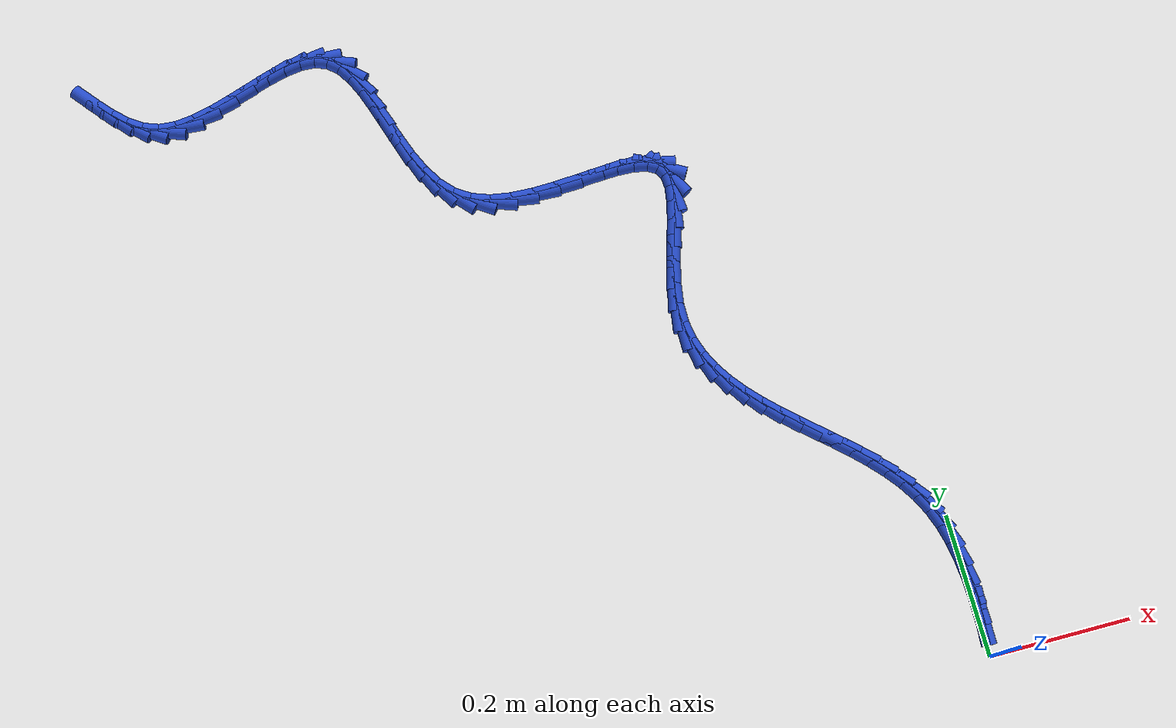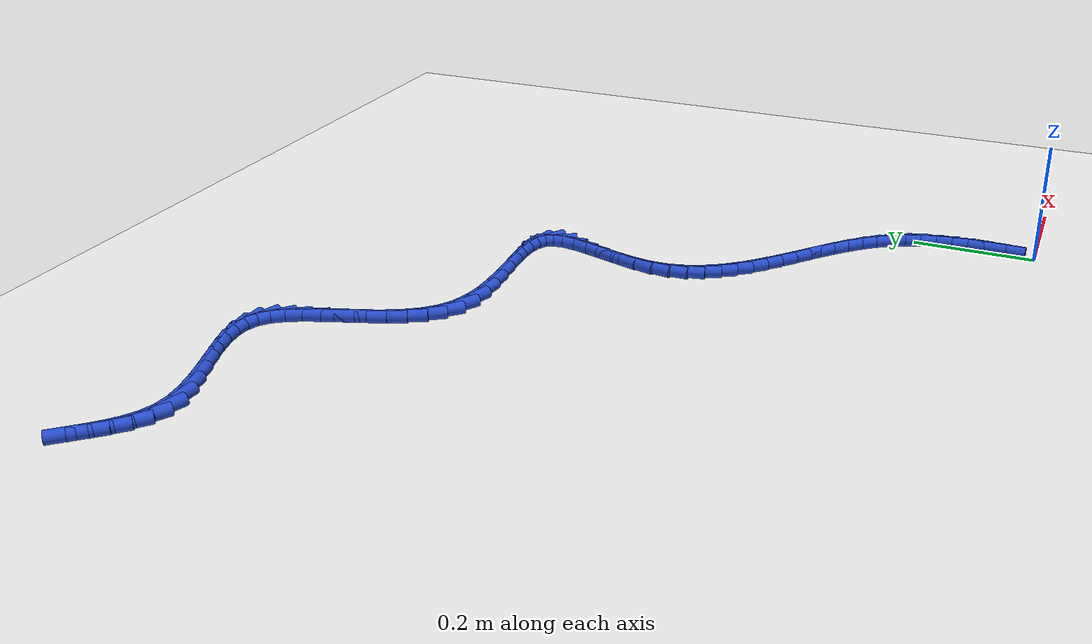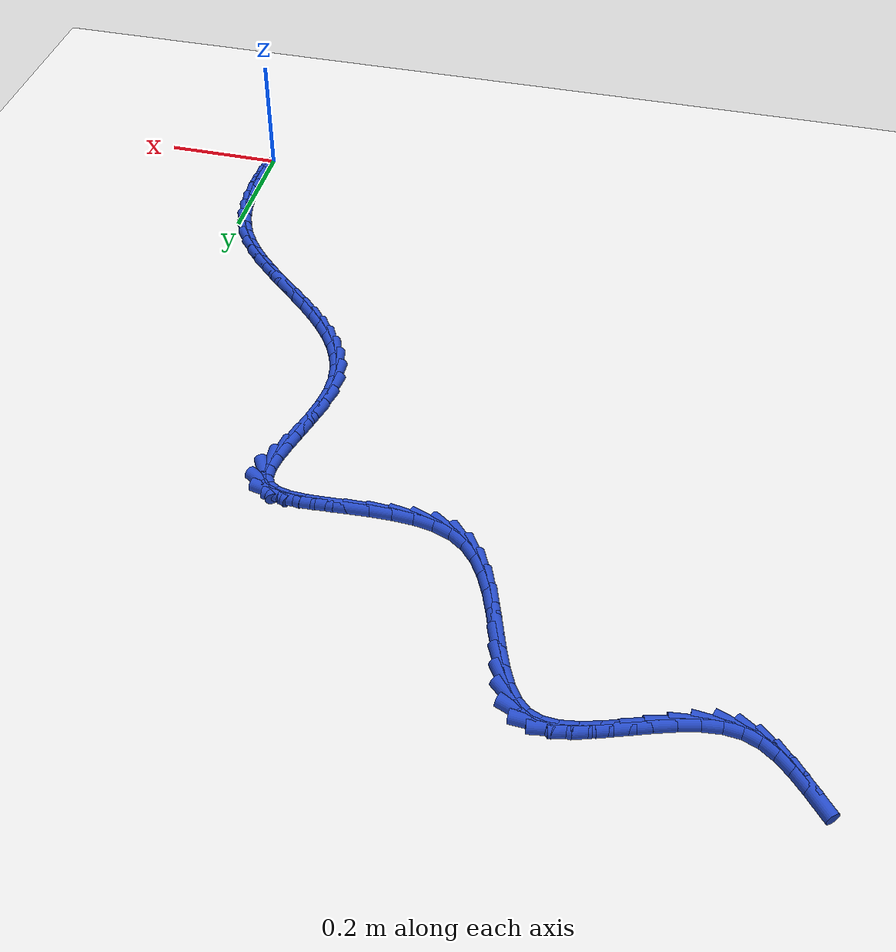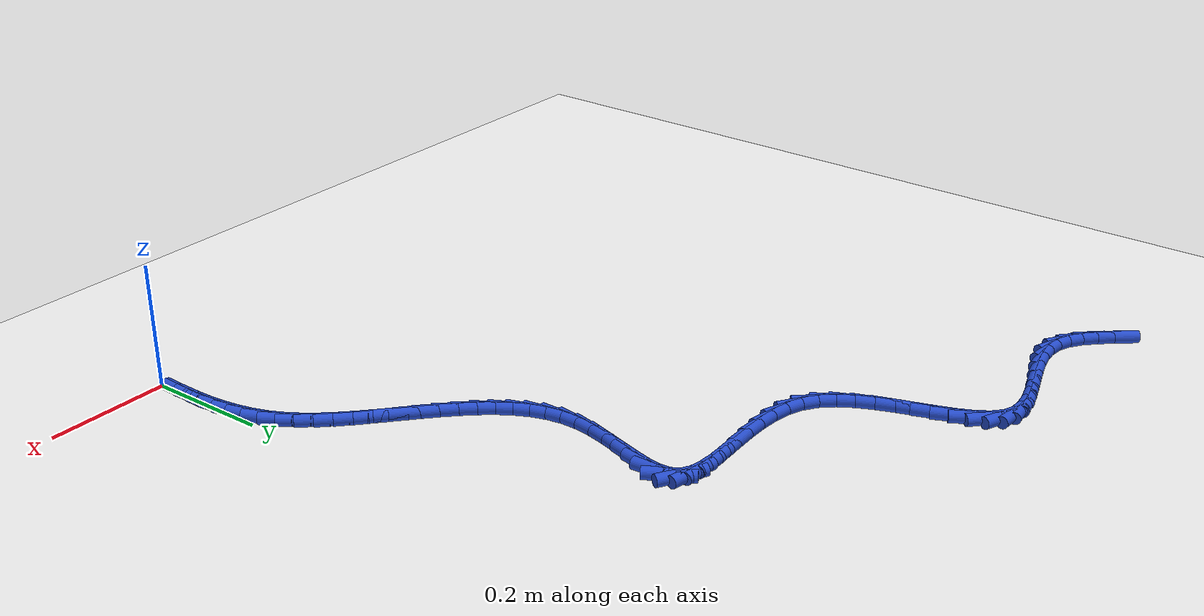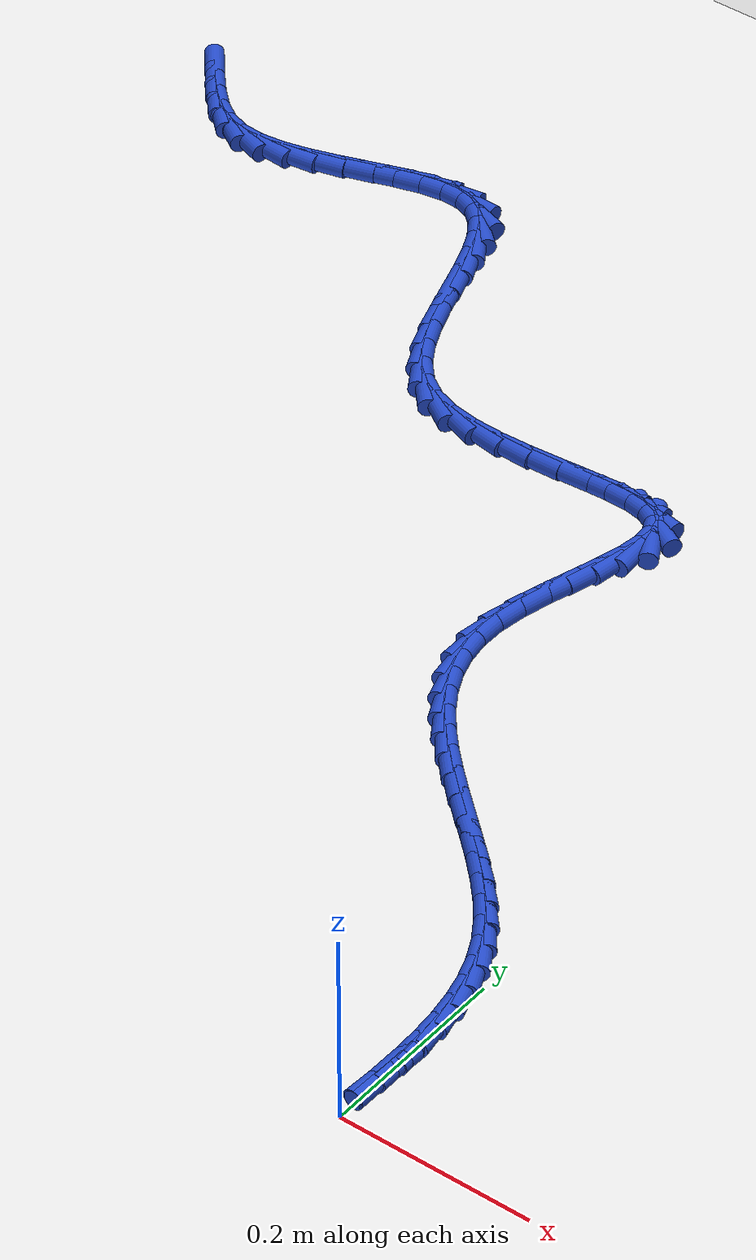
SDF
<sdf version="1.6">
 <world name="default">
  <model name="ground_plane">
   <static>1</static>
   <link name="link">
    <collision name="collision">
     <geometry><plane><normal>0 0 1</normal><size>100 100</size></plane></geometry>
     <surface><friction><ode><mu>100</mu><mu2>50</mu2></ode></friction></surface>
    </collision>
    <visual name="visual">
     <cast_shadows>0</cast_shadows>
     <geometry><plane><normal>0 0 1</normal><size>100 100</size></plane></geometry>
     <material>
      <script><uri>file://media/materials/scripts/gazebo.material</uri><name>Gazebo/WhiteGlow</name></script>
     </material>
    </visual>
   </link>
  </model>
  <model name="line">
   <link name="link_2">
    <pose>0.00297305319521827 0.055140027003314086 0.01 0 1.57 1.5581401452712988</pose>
    <collision name="collision">
     <geometry><cylinder><radius>0.01</radius><length>0.08</length></cylinder></geometry>
    </collision>
    <visual name="visual">
     <material>
      <script><name>Gazebo/Blue</name><uri>file://media/materials/scripts/gazebo.material</uri></script>
     </material>
     <geometry><cylinder><radius>0.01</radius><length>0.08</length></cylinder></geometry>
    </visual>
   </link>
   <link name="link_3">
    <pose>0.0033229610822005785 0.08278574332831226 0.01 0 1.57 -1.5402923842408789</pose>
    <collision name="collision">
     <geometry><cylinder><radius>0.01</radius><length>0.08</length></cylinder></geometry>
    </collision>
    <visual name="visual">
     <material>
      <script><name>Gazebo/Blue</name><uri>file://media/materials/scripts/gazebo.material</uri></script>
     </material>
     <geometry><cylinder><radius>0.01</radius><length>0.08</length></cylinder></geometry>
    </visual>
   </link>
   <link name="link_4">
    <pose>0.0024856830080716495 0.11022542144318874 0.01 0 1.57 -1.4842367252459752</pose>
    <collision name="collision">
     <geometry><cylinder><radius>0.01</radius><length>0.08</length></cylinder></geometry>
    </collision>
    <visual name="visual">
     <material>
      <script><name>Gazebo/Blue</name><uri>file://media/materials/scripts/gazebo.material</uri></script>
     </material>
     <geometry><cylinder><radius>0.01</radius><length>0.08</length></cylinder></geometry>
    </visual>
   </link>
   <link name="link_5">
    <pose>0.00013913885731146967 0.13726668127868177 0.01 0 1.57 -1.4141390577073683</pose>
    <collision name="collision">
     <geometry><cylinder><radius>0.01</radius><length>0.08</length></cylinder></geometry>
    </collision>
    <visual name="visual">
     <material>
      <script><name>Gazebo/Blue</name><uri>file://media/materials/scripts/gazebo.material</uri></script>
     </material>
     <geometry><cylinder><radius>0.01</radius><length>0.08</length></cylinder></geometry>
    </visual>
   </link>
   <link name="link_6">
    <pose>-0.004038751485599986 0.16371714276552943 0.01 0 1.57 -1.328955406196113</pose>
    <collision name="collision">
     <geometry><cylinder><radius>0.01</radius><length>0.08</length></cylinder></geometry>
    </collision>
    <visual name="visual">
     <material>
      <script><name>Gazebo/Blue</name><uri>file://media/materials/scripts/gazebo.material</uri></script>
     </material>
     <geometry><cylinder><radius>0.01</radius><length>0.08</length></cylinder></geometry>
    </visual>
   </link>
   <link name="link_7">
    <pose>-0.010370068136182723 0.18938442583447004 0.01 0 1.57 -1.228190893494446</pose>
    <collision name="collision">
     <geometry><cylinder><radius>0.01</radius><length>0.08</length></cylinder></geometry>
    </collision>
    <visual name="visual">
     <material>
      <script><name>Gazebo/Blue</name><uri>file://media/materials/scripts/gazebo.material</uri></script>
     </material>
     <geometry><cylinder><radius>0.01</radius><length>0.08</length></cylinder></geometry>
    </visual>
   </link>
   <link name="link_8">
    <pose>-0.01917689120995676 0.2140761504162416 0.01 0 1.57 -1.1126762332230302</pose>
    <collision name="collision">
     <geometry><cylinder><radius>0.01</radius><length>0.08</length></cylinder></geometry>
    </collision>
    <visual name="visual">
     <material>
      <script><name>Gazebo/Blue</name><uri>file://media/materials/scripts/gazebo.material</uri></script>
     </material>
     <geometry><cylinder><radius>0.01</radius><length>0.08</length></cylinder></geometry>
    </visual>
   </link>
   <link name="link_9">
    <pose>-0.030777596258192232 0.23760176326670743 0.01 0 1.57 -0.9965495215671685</pose>
    <collision name="collision">
     <geometry><cylinder><radius>0.01</radius><length>0.08</length></cylinder></geometry>
    </collision>
    <visual name="visual">
     <material>
      <script><name>Gazebo/Blue</name><uri>file://media/materials/scripts/gazebo.material</uri></script>
     </material>
     <geometry><cylinder><radius>0.01</radius><length>0.08</length></cylinder></geometry>
    </visual>
   </link>
   <link name="link_10">
    <pose>-0.04520992030766205 0.2599091019140395 0.01 0 1.57 -0.9014258694540425</pose>
    <collision name="collision">
     <geometry><cylinder><radius>0.01</radius><length>0.08</length></cylinder></geometry>
    </collision>
    <visual name="visual">
     <material>
      <script><name>Gazebo/Blue</name><uri>file://media/materials/scripts/gazebo.material</uri></script>
     </material>
     <geometry><cylinder><radius>0.01</radius><length>0.08</length></cylinder></geometry>
    </visual>
   </link>
   <link name="link_11">
    <pose>-0.0620392492085431 0.28117893357504437 0.01 0 1.57 -0.8284798677416844</pose>
    <collision name="collision">
     <geometry><cylinder><radius>0.01</radius><length>0.08</length></cylinder></geometry>
    </collision>
    <visual name="visual">
     <material>
      <script><name>Gazebo/Blue</name><uri>file://media/materials/scripts/gazebo.material</uri></script>
     </material>
     <geometry><cylinder><radius>0.01</radius><length>0.08</length></cylinder></geometry>
    </visual>
   </link>
   <link name="link_12">
    <pose>-0.08078563250280894 0.30161438207888996 0.01 0 1.57 -0.7759130741640365</pose>
    <collision name="collision">
     <geometry><cylinder><radius>0.01</radius><length>0.08</length></cylinder></geometry>
    </collision>
    <visual name="visual">
     <material>
      <script><name>Gazebo/Blue</name><uri>file://media/materials/scripts/gazebo.material</uri></script>
     </material>
     <geometry><cylinder><radius>0.01</radius><length>0.08</length></cylinder></geometry>
    </visual>
   </link>
   <link name="link_13">
    <pose>-0.10096911973243322 0.3214185712547443 0.01 0 1.57 -0.7418735707848516</pose>
    <collision name="collision">
     <geometry><cylinder><radius>0.01</radius><length>0.08</length></cylinder></geometry>
    </collision>
    <visual name="visual">
     <material>
      <script><name>Gazebo/Blue</name><uri>file://media/materials/scripts/gazebo.material</uri></script>
     </material>
     <geometry><cylinder><radius>0.01</radius><length>0.08</length></cylinder></geometry>
    </visual>
   </link>
   <link name="link_14">
    <pose>-0.12210976043938972 0.34079462493177565 0.01 0 1.57 -0.7249648728377506</pose>
    <collision name="collision">
     <geometry><cylinder><radius>0.01</radius><length>0.08</length></cylinder></geometry>
    </collision>
    <visual name="visual">
     <material>
      <script><name>Gazebo/Blue</name><uri>file://media/materials/scripts/gazebo.material</uri></script>
     </material>
     <geometry><cylinder><radius>0.01</radius><length>0.08</length></cylinder></geometry>
    </visual>
   </link>
   <link name="link_15">
    <pose>-0.14372760416565195 0.35994566693915175 0.01 0 1.57 -0.7244603814829383</pose>
    <collision name="collision">
     <geometry><cylinder><radius>0.01</radius><length>0.08</length></cylinder></geometry>
    </collision>
    <visual name="visual">
     <material>
      <script><name>Gazebo/Blue</name><uri>file://media/materials/scripts/gazebo.material</uri></script>
     </material>
     <geometry><cylinder><radius>0.01</radius><length>0.08</length></cylinder></geometry>
    </visual>
   </link>
   <link name="link_16">
    <pose>-0.1653427004531936 0.37907482110604085 0.01 0 1.57 -0.740377107047922</pose>
    <collision name="collision">
     <geometry><cylinder><radius>0.01</radius><length>0.08</length></cylinder></geometry>
    </collision>
    <visual name="visual">
     <material>
      <script><name>Gazebo/Blue</name><uri>file://media/materials/scripts/gazebo.material</uri></script>
     </material>
     <geometry><cylinder><radius>0.01</radius><length>0.08</length></cylinder></geometry>
    </visual>
   </link>
   <link name="link_17">
    <pose>-0.18647509884398833 0.3983852112616108 0.01 0 1.57 -0.7734833623869911</pose>
    <collision name="collision">
     <geometry><cylinder><radius>0.01</radius><length>0.08</length></cylinder></geometry>
    </collision>
    <visual name="visual">
     <material>
      <script><name>Gazebo/Blue</name><uri>file://media/materials/scripts/gazebo.material</uri></script>
     </material>
     <geometry><cylinder><radius>0.01</radius><length>0.08</length></cylinder></geometry>
    </visual>
   </link>
   <link name="link_18">
    <pose>-0.20664484888000972 0.4180799612350295 0.01 0 1.57 -0.8252413813281131</pose>
    <collision name="collision">
     <geometry><cylinder><radius>0.01</radius><length>0.08</length></cylinder></geometry>
    </collision>
    <visual name="visual">
     <material>
      <script><name>Gazebo/Blue</name><uri>file://media/materials/scripts/gazebo.material</uri></script>
     </material>
     <geometry><cylinder><radius>0.01</radius><length>0.08</length></cylinder></geometry>
    </visual>
   </link>
   <link name="link_19">
    <pose>-0.2253720001032316 0.43836219485546546 0.01 0 1.57 -0.8976103176153315</pose>
    <collision name="collision">
     <geometry><cylinder><radius>0.01</radius><length>0.08</length></cylinder></geometry>
    </collision>
    <visual name="visual">
     <material>
      <script><name>Gazebo/Blue</name><uri>file://media/materials/scripts/gazebo.material</uri></script>
     </material>
     <geometry><cylinder><radius>0.01</radius><length>0.08</length></cylinder></geometry>
    </visual>
   </link>
   <link name="link_20">
    <pose>-0.24217660205562738 0.4594350359520862 0.01 0 1.57 -0.992549201913956</pose>
    <collision name="collision">
     <geometry><cylinder><radius>0.01</radius><length>0.08</length></cylinder></geometry>
    </collision>
    <visual name="visual">
     <material>
      <script><name>Gazebo/Blue</name><uri>file://media/materials/scripts/gazebo.material</uri></script>
     </material>
     <geometry><cylinder><radius>0.01</radius><length>0.08</length></cylinder></geometry>
    </visual>
   </link>
   <link name="link_21">
    <pose>-0.2565787042791709 0.4815016083540599 0.01 0 1.57 -1.1110098002361324</pose>
    <collision name="collision">
     <geometry><cylinder><radius>0.01</radius><length>0.08</length></cylinder></geometry>
    </collision>
    <visual name="visual">
     <material>
      <script><name>Gazebo/Blue</name><uri>file://media/materials/scripts/gazebo.material</uri></script>
     </material>
     <geometry><cylinder><radius>0.01</radius><length>0.08</length></cylinder></geometry>
    </visual>
   </link>
   <link name="link_22">
    <pose>-0.26809835631583573 0.5047650358905547 0.01 0 1.57 -1.2513787958632676</pose>
    <collision name="collision">
     <geometry><cylinder><radius>0.01</radius><length>0.08</length></cylinder></geometry>
    </collision>
    <visual name="visual">
     <material>
      <script><name>Gazebo/Blue</name><uri>file://media/materials/scripts/gazebo.material</uri></script>
     </material>
     <geometry><cylinder><radius>0.01</radius><length>0.08</length></cylinder></geometry>
    </visual>
   </link>
   <link name="link_23">
    <pose>-0.27625560770759555 0.5294284423907386 0.01 0 1.57 -1.4079767066610775</pose>
    <collision name="collision">
     <geometry><cylinder><radius>0.01</radius><length>0.08</length></cylinder></geometry>
    </collision>
    <visual name="visual">
     <material>
      <script><name>Gazebo/Blue</name><uri>file://media/materials/scripts/gazebo.material</uri></script>
     </material>
     <geometry><cylinder><radius>0.01</radius><length>0.08</length></cylinder></geometry>
    </visual>
   </link>
   <link name="link_24">
    <pose>-0.28057050799642397 0.5556949516837795 0.01 0 1.57 1.5705443147911478</pose>
    <collision name="collision">
     <geometry><cylinder><radius>0.01</radius><length>0.08</length></cylinder></geometry>
    </collision>
    <visual name="visual">
     <material>
      <script><name>Gazebo/Blue</name><uri>file://media/materials/scripts/gazebo.material</uri></script>
     </material>
     <geometry><cylinder><radius>0.01</radius><length>0.08</length></cylinder></geometry>
    </visual>
   </link>
   <link name="link_25">
    <pose>-0.2805634333794303 0.5837674908432817 0.01 0 1.57 1.4257920130230182</pose>
    <collision name="collision">
     <geometry><cylinder><radius>0.01</radius><length>0.08</length></cylinder></geometry>
    </collision>
    <visual name="visual">
     <material>
      <script><name>Gazebo/Blue</name><uri>file://media/materials/scripts/gazebo.material</uri></script>
     </material>
     <geometry><cylinder><radius>0.01</radius><length>0.08</length></cylinder></geometry>
    </visual>
   </link>
   <link name="link_26">
    <pose>-0.2762107650227242 0.6135743195492026 0.01 0 1.57 1.335130860862073</pose>
    <collision name="collision">
     <geometry><cylinder><radius>0.01</radius><length>0.08</length></cylinder></geometry>
    </collision>
    <visual name="visual">
     <material>
      <script><name>Gazebo/Blue</name><uri>file://media/materials/scripts/gazebo.material</uri></script>
     </material>
     <geometry><cylinder><radius>0.01</radius><length>0.08</length></cylinder></geometry>
    </visual>
   </link>
   <link name="link_27">
    <pose>-0.268851136227735 0.6442231664150978 0.01 0 1.57 1.2901959788291775</pose>
    <collision name="collision">
     <geometry><cylinder><radius>0.01</radius><length>0.08</length></cylinder></geometry>
    </collision>
    <visual name="visual">
     <material>
      <script><name>Gazebo/Blue</name><uri>file://media/materials/scripts/gazebo.material</uri></script>
     </material>
     <geometry><cylinder><radius>0.01</radius><length>0.08</length></cylinder></geometry>
    </visual>
   </link>
   <link name="link_28">
    <pose>-0.26007645305476546 0.6746692052068983 0.01 0 1.57 1.2844276344993268</pose>
    <collision name="collision">
     <geometry><cylinder><radius>0.01</radius><length>0.08</length></cylinder></geometry>
    </collision>
    <visual name="visual">
     <material>
      <script><name>Gazebo/Blue</name><uri>file://media/materials/scripts/gazebo.material</uri></script>
     </material>
     <geometry><cylinder><radius>0.01</radius><length>0.08</length></cylinder></geometry>
    </visual>
   </link>
   <link name="link_29">
    <pose>-0.2514786215641184 0.7038676096905362 0.01 0 1.57 1.322232350640513</pose>
    <collision name="collision">
     <geometry><cylinder><radius>0.01</radius><length>0.08</length></cylinder></geometry>
    </collision>
    <visual name="visual">
     <material>
      <script><name>Gazebo/Blue</name><uri>file://media/materials/scripts/gazebo.material</uri></script>
     </material>
     <geometry><cylinder><radius>0.01</radius><length>0.08</length></cylinder></geometry>
    </visual>
   </link>
   <link name="link_30">
    <pose>-0.24464954781609638 0.730773553631943 0.01 0 1.57 1.4246831106242652</pose>
    <collision name="collision">
     <geometry><cylinder><radius>0.01</radius><length>0.08</length></cylinder></geometry>
    </collision>
    <visual name="visual">
     <material>
      <script><name>Gazebo/Blue</name><uri>file://media/materials/scripts/gazebo.material</uri></script>
     </material>
     <geometry><cylinder><radius>0.01</radius><length>0.08</length></cylinder></geometry>
    </visual>
   </link>
   <link name="link_31">
    <pose>-0.2411811378710022 0.7543422107970507 0.01 0 1.57 -1.4935958551466102</pose>
    <collision name="collision">
     <geometry><cylinder><radius>0.01</radius><length>0.08</length></cylinder></geometry>
    </collision>
    <visual name="visual">
     <material>
      <script><name>Gazebo/Blue</name><uri>file://media/materials/scripts/gazebo.material</uri></script>
     </material>
     <geometry><cylinder><radius>0.01</radius><length>0.08</length></cylinder></geometry>
    </visual>
   </link>
   <link name="link_32">
    <pose>-0.2426652977891386 0.7735287549517907 0.01 0 1.57 -1.0463394015341139</pose>
    <collision name="collision">
     <geometry><cylinder><radius>0.01</radius><length>0.08</length></cylinder></geometry>
    </collision>
    <visual name="visual">
     <material>
      <script><name>Gazebo/Blue</name><uri>file://media/materials/scripts/gazebo.material</uri></script>
     </material>
     <geometry><cylinder><radius>0.01</radius><length>0.08</length></cylinder></geometry>
    </visual>
   </link>
   <link name="link_33">
    <pose>-0.2506469109383618 0.7873259574337156 0.01 0 1.57 -0.5165842766796802</pose>
    <collision name="collision">
     <geometry><cylinder><radius>0.01</radius><length>0.08</length></cylinder></geometry>
    </collision>
    <visual name="visual">
     <material>
      <script><name>Gazebo/Blue</name><uri>file://media/materials/scripts/gazebo.material</uri></script>
     </material>
     <geometry><cylinder><radius>0.01</radius><length>0.08</length></cylinder></geometry>
    </visual>
   </link>
   <link name="link_34">
    <pose>-0.2654266824783944 0.7957213875567517 0.01 0 1.57 -0.19490272206394027</pose>
    <collision name="collision">
     <geometry><cylinder><radius>0.01</radius><length>0.08</length></cylinder></geometry>
    </collision>
    <visual name="visual">
     <material>
      <script><name>Gazebo/Blue</name><uri>file://media/materials/scripts/gazebo.material</uri></script>
     </material>
     <geometry><cylinder><radius>0.01</radius><length>0.08</length></cylinder></geometry>
    </visual>
   </link>
   <link name="link_35">
    <pose>-0.2859634464700576 0.7997755241625881 0.01 0 1.57 -0.032806854001937114</pose>
    <collision name="collision">
     <geometry><cylinder><radius>0.01</radius><length>0.08</length></cylinder></geometry>
    </collision>
    <visual name="visual">
     <material>
      <script><name>Gazebo/Blue</name><uri>file://media/materials/scripts/gazebo.material</uri></script>
     </material>
     <geometry><cylinder><radius>0.01</radius><length>0.08</length></cylinder></geometry>
    </visual>
   </link>
   <link name="link_36">
    <pose>-0.31114944070004913 0.8006020939623105 0.01 0 1.57 0.044779791011084216</pose>
    <collision name="collision">
     <geometry><cylinder><radius>0.01</radius><length>0.08</length></cylinder></geometry>
    </collision>
    <visual name="visual">
     <material>
      <script><name>Gazebo/Blue</name><uri>file://media/materials/scripts/gazebo.material</uri></script>
     </material>
     <geometry><cylinder><radius>0.01</radius><length>0.08</length></cylinder></geometry>
    </visual>
   </link>
   <link name="link_37">
    <pose>-0.3398769029550665 0.7993148236670048 0.01 0 1.57 0.07327352258030873</pose>
    <collision name="collision">
     <geometry><cylinder><radius>0.01</radius><length>0.08</length></cylinder></geometry>
    </collision>
    <visual name="visual">
     <material>
      <script><name>Gazebo/Blue</name><uri>file://media/materials/scripts/gazebo.material</uri></script>
     </material>
     <geometry><cylinder><radius>0.01</radius><length>0.08</length></cylinder></geometry>
    </visual>
   </link>
   <link name="link_38">
    <pose>-0.37103807102180736 0.797027439987756 0.01 0 1.57 0.06681218499301486</pose>
    <collision name="collision">
     <geometry><cylinder><radius>0.01</radius><length>0.08</length></cylinder></geometry>
    </collision>
    <visual name="visual">
     <material>
      <script><name>Gazebo/Blue</name><uri>file://media/materials/scripts/gazebo.material</uri></script>
     </material>
     <geometry><cylinder><radius>0.01</radius><length>0.08</length></cylinder></geometry>
    </visual>
   </link>
   <link name="link_39">
    <pose>-0.40352518268696896 0.7948536696356499 0.01 0 1.57 0.02893006522902035</pose>
    <collision name="collision">
     <geometry><cylinder><radius>0.01</radius><length>0.08</length></cylinder></geometry>
    </collision>
    <visual name="visual">
     <material>
      <script><name>Gazebo/Blue</name><uri>file://media/materials/scripts/gazebo.material</uri></script>
     </material>
     <geometry><cylinder><radius>0.01</radius><length>0.08</length></cylinder></geometry>
    </visual>
   </link>
   <link name="link_40">
    <pose>-0.4362304757372488 0.793907239321772 0.01 0 1.57 -0.043806789329072726</pose>
    <collision name="collision">
     <geometry><cylinder><radius>0.01</radius><length>0.08</length></cylinder></geometry>
    </collision>
    <visual name="visual">
     <material>
      <script><name>Gazebo/Blue</name><uri>file://media/materials/scripts/gazebo.material</uri></script>
     </material>
     <geometry><cylinder><radius>0.01</radius><length>0.08</length></cylinder></geometry>
    </visual>
   </link>
   <link name="link_41">
    <pose>-0.46804618795934494 0.795301875757208 0.01 0 1.57 -0.16122079600361436</pose>
    <collision name="collision">
     <geometry><cylinder><radius>0.01</radius><length>0.08</length></cylinder></geometry>
    </collision>
    <visual name="visual">
     <material>
      <script><name>Gazebo/Blue</name><uri>file://media/materials/scripts/gazebo.material</uri></script>
     </material>
     <geometry><cylinder><radius>0.01</radius><length>0.08</length></cylinder></geometry>
    </visual>
   </link>
   <link name="link_42">
    <pose>-0.4978645571399546 0.8001513056530433 0.01 0 1.57 -0.3389510142445595</pose>
    <collision name="collision">
     <geometry><cylinder><radius>0.01</radius><length>0.08</length></cylinder></geometry>
    </collision>
    <visual name="visual">
     <material>
      <script><name>Gazebo/Blue</name><uri>file://media/materials/scripts/gazebo.material</uri></script>
     </material>
     <geometry><cylinder><radius>0.01</radius><length>0.08</length></cylinder></geometry>
    </visual>
   </link>
   <link name="link_43">
    <pose>-0.5245778210657752 0.8095692557203633 0.01 0 1.57 -0.5856045023158087</pose>
    <collision name="collision">
     <geometry><cylinder><radius>0.01</radius><length>0.08</length></cylinder></geometry>
    </collision>
    <visual name="visual">
     <material>
      <script><name>Gazebo/Blue</name><uri>file://media/materials/scripts/gazebo.material</uri></script>
     </material>
     <geometry><cylinder><radius>0.01</radius><length>0.08</length></cylinder></geometry>
    </visual>
   </link>
   <link name="link_44">
    <pose>-0.5471715535836019 0.8245536058656516 0.01 0 1.57 -0.8289837653993054</pose>
    <collision name="collision">
     <geometry><cylinder><radius>0.01</radius><length>0.08</length></cylinder></geometry>
    </collision>
    <visual name="visual">
     <material>
      <script><name>Gazebo/Blue</name><uri>file://media/materials/scripts/gazebo.material</uri></script>
     </material>
     <geometry><cylinder><radius>0.01</radius><length>0.08</length></cylinder></geometry>
    </visual>
   </link>
   <link name="link_45">
    <pose>-0.565701671827599 0.8447737478468663 0.01 0 1.57 -1.0112187923751723</pose>
    <collision name="collision">
     <geometry><cylinder><radius>0.01</radius><length>0.08</length></cylinder></geometry>
    </collision>
    <visual name="visual">
     <material>
      <script><name>Gazebo/Blue</name><uri>file://media/materials/scripts/gazebo.material</uri></script>
     </material>
     <geometry><cylinder><radius>0.01</radius><length>0.08</length></cylinder></geometry>
    </visual>
   </link>
   <link name="link_46">
    <pose>-0.5809077257487009 0.869050562382806 0.01 0 1.57 -1.135167761497462</pose>
    <collision name="collision">
     <geometry><cylinder><radius>0.01</radius><length>0.08</length></cylinder></geometry>
    </collision>
    <visual name="visual">
     <material>
      <script><name>Gazebo/Blue</name><uri>file://media/materials/scripts/gazebo.material</uri></script>
     </material>
     <geometry><cylinder><radius>0.01</radius><length>0.08</length></cylinder></geometry>
    </visual>
   </link>
   <link name="link_47">
    <pose>-0.5935403526587888 0.8961911687871325 0.01 0 1.57 -1.2118577550688658</pose>
    <collision name="collision">
     <geometry><cylinder><radius>0.01</radius><length>0.08</length></cylinder></geometry>
    </collision>
    <visual name="visual">
     <material>
      <script><name>Gazebo/Blue</name><uri>file://media/materials/scripts/gazebo.material</uri></script>
     </material>
     <geometry><cylinder><radius>0.01</radius><length>0.08</length></cylinder></geometry>
    </visual>
   </link>
   <link name="link_48">
    <pose>-0.6043501898697429 0.9250026863735061 0.01 0 1.57 -1.2498294674316337</pose>
    <collision name="collision">
     <geometry><cylinder><radius>0.01</radius><length>0.08</length></cylinder></geometry>
    </collision>
    <visual name="visual">
     <material>
      <script><name>Gazebo/Blue</name><uri>file://media/materials/scripts/gazebo.material</uri></script>
     </material>
     <geometry><cylinder><radius>0.01</radius><length>0.08</length></cylinder></geometry>
    </visual>
   </link>
   <link name="link_49">
    <pose>-0.6140878746934438 0.9542922344555878 0.01 0 1.57 -1.252474261627351</pose>
    <collision name="collision">
     <geometry><cylinder><radius>0.01</radius><length>0.08</length></cylinder></geometry>
    </collision>
    <visual name="visual">
     <material>
      <script><name>Gazebo/Blue</name><uri>file://media/materials/scripts/gazebo.material</uri></script>
     </material>
     <geometry><cylinder><radius>0.01</radius><length>0.08</length></cylinder></geometry>
    </visual>
   </link>
   <link name="link_50">
    <pose>-0.6235040444417723 0.9828669323470379 0.01 0 1.57 -1.2171252826905221</pose>
    <collision name="collision">
     <geometry><cylinder><radius>0.01</radius><length>0.08</length></cylinder></geometry>
    </collision>
    <visual name="visual">
     <material>
      <script><name>Gazebo/Blue</name><uri>file://media/materials/scripts/gazebo.material</uri></script>
     </material>
     <geometry><cylinder><radius>0.01</radius><length>0.08</length></cylinder></geometry>
    </visual>
   </link>
   <link name="link_51">
    <pose>-0.633349336426609 1.0095338993615173 0.01 0 1.57 -1.1332141804398486</pose>
    <collision name="collision">
     <geometry><cylinder><radius>0.01</radius><length>0.08</length></cylinder></geometry>
    </collision>
    <visual name="visual">
     <material>
      <script><name>Gazebo/Blue</name><uri>file://media/materials/scripts/gazebo.material</uri></script>
     </material>
     <geometry><cylinder><radius>0.01</radius><length>0.08</length></cylinder></geometry>
    </visual>
   </link>
   <link name="link_52">
    <pose>-0.6443743879598344 1.0331002548126875 0.01 0 1.57 -0.9789645201290234</pose>
    <collision name="collision">
     <geometry><cylinder><radius>0.01</radius><length>0.08</length></cylinder></geometry>
    </collision>
    <visual name="visual">
     <material>
      <script><name>Gazebo/Blue</name><uri>file://media/materials/scripts/gazebo.material</uri></script>
     </material>
     <geometry><cylinder><radius>0.01</radius><length>0.08</length></cylinder></geometry>
    </visual>
   </link>
   <link name="link_53">
    <pose>-0.6573298363533289 1.0523731180142082 0.01 0 1.57 -0.7226050466083892</pose>
    <collision name="collision">
     <geometry><cylinder><radius>0.01</radius><length>0.08</length></cylinder></geometry>
    </collision>
    <visual name="visual">
     <material>
      <script><name>Gazebo/Blue</name><uri>file://media/materials/scripts/gazebo.material</uri></script>
     </material>
     <geometry><cylinder><radius>0.01</radius><length>0.08</length></cylinder></geometry>
    </visual>
   </link>
   <link name="link_54">
    <pose>-0.6729663189189735 1.066159608279741 0.01 0 1.57 -0.3620372644582955</pose>
    <collision name="collision">
     <geometry><cylinder><radius>0.01</radius><length>0.08</length></cylinder></geometry>
    </collision>
    <visual name="visual">
     <material>
      <script><name>Gazebo/Blue</name><uri>file://media/materials/scripts/gazebo.material</uri></script>
     </material>
     <geometry><cylinder><radius>0.01</radius><length>0.08</length></cylinder></geometry>
    </visual>
   </link>
   <link name="link_55">
    <pose>-0.6919831246350965 1.0733618534171836 0.01 0 1.57 -0.04179433932981418</pose>
    <collision name="collision">
     <geometry><cylinder><radius>0.01</radius><length>0.08</length></cylinder></geometry>
    </collision>
    <visual name="visual">
     <material>
      <script><name>Gazebo/Blue</name><uri>file://media/materials/scripts/gazebo.material</uri></script>
     </material>
     <geometry><cylinder><radius>0.01</radius><length>0.08</length></cylinder></geometry>
    </visual>
   </link>
   <link name="link_56">
    <pose>-0.7143154498733547 1.0742957620330702 0.01 0 1.57 0.15610548657679899</pose>
    <collision name="collision">
     <geometry><cylinder><radius>0.01</radius><length>0.08</length></cylinder></geometry>
    </collision>
    <visual name="visual">
     <material>
      <script><name>Gazebo/Blue</name><uri>file://media/materials/scripts/gazebo.material</uri></script>
     </material>
     <geometry><cylinder><radius>0.01</radius><length>0.08</length></cylinder></geometry>
    </visual>
   </link>
   <link name="link_57">
    <pose>-0.7393124472580768 1.0703615843306191 0.01 0 1.57 0.26666022437491976</pose>
    <collision name="collision">
     <geometry><cylinder><radius>0.01</radius><length>0.08</length></cylinder></geometry>
    </collision>
    <visual name="visual">
     <material>
      <script><name>Gazebo/Blue</name><uri>file://media/materials/scripts/gazebo.material</uri></script>
     </material>
     <geometry><cylinder><radius>0.01</radius><length>0.08</length></cylinder></geometry>
    </visual>
   </link>
   <link name="link_58">
    <pose>-0.7663083183560692 1.062987234068303 0.01 0 1.57 0.3199585354639432</pose>
    <collision name="collision">
     <geometry><cylinder><radius>0.01</radius><length>0.08</length></cylinder></geometry>
    </collision>
    <visual name="visual">
     <material>
      <script><name>Gazebo/Blue</name><uri>file://media/materials/scripts/gazebo.material</uri></script>
     </material>
     <geometry><cylinder><radius>0.01</radius><length>0.08</length></cylinder></geometry>
    </visual>
   </link>
   <link name="link_59">
    <pose>-0.794637264734138 1.053600625004596 0.01 0 1.57 0.3312040954945419</pose>
    <collision name="collision">
     <geometry><cylinder><radius>0.01</radius><length>0.08</length></cylinder></geometry>
    </collision>
    <visual name="visual">
     <material>
      <script><name>Gazebo/Blue</name><uri>file://media/materials/scripts/gazebo.material</uri></script>
     </material>
     <geometry><cylinder><radius>0.01</radius><length>0.08</length></cylinder></geometry>
    </visual>
   </link>
   <link name="link_60">
    <pose>-0.8236334879590894 1.0436296708979704 0.01 0 1.57 0.3049446334142017</pose>
    <collision name="collision">
     <geometry><cylinder><radius>0.01</radius><length>0.08</length></cylinder></geometry>
    </collision>
    <visual name="visual">
     <material>
      <script><name>Gazebo/Blue</name><uri>file://media/materials/scripts/gazebo.material</uri></script>
     </material>
     <geometry><cylinder><radius>0.01</radius><length>0.08</length></cylinder></geometry>
    </visual>
   </link>
   <link name="link_61">
    <pose>-0.8526311895977294 1.0345022855068997 0.01 0 1.57 0.23740934042930026</pose>
    <collision name="collision">
     <geometry><cylinder><radius>0.01</radius><length>0.08</length></cylinder></geometry>
    </collision>
    <visual name="visual">
     <material>
      <script><name>Gazebo/Blue</name><uri>file://media/materials/scripts/gazebo.material</uri></script>
     </material>
     <geometry><cylinder><radius>0.01</radius><length>0.08</length></cylinder></geometry>
    </visual>
   </link>
   <link name="link_62">
    <pose>-0.8809645712168644 1.0276463825898572 0.01 0 1.57 0.11636543546562135</pose>
    <collision name="collision">
     <geometry><cylinder><radius>0.01</radius><length>0.08</length></cylinder></geometry>
    </collision>
    <visual name="visual">
     <material>
      <script><name>Gazebo/Blue</name><uri>file://media/materials/scripts/gazebo.material</uri></script>
     </material>
     <geometry><cylinder><radius>0.01</radius><length>0.08</length></cylinder></geometry>
    </visual>
   </link>
   <link name="link_63">
    <pose>-0.9079678343833006 1.024489875905316 0.01 0 1.57 -0.07864642244492971</pose>
    <collision name="collision">
     <geometry><cylinder><radius>0.01</radius><length>0.08</length></cylinder></geometry>
    </collision>
    <visual name="visual">
     <material>
      <script><name>Gazebo/Blue</name><uri>file://media/materials/scripts/gazebo.material</uri></script>
     </material>
     <geometry><cylinder><radius>0.01</radius><length>0.08</length></cylinder></geometry>
    </visual>
   </link>
   <link name="link_64">
    <pose>-0.9329751806638442 1.0264606792117494 0.01 0 1.57 -0.3468033629509957</pose>
    <collision name="collision">
     <geometry><cylinder><radius>0.01</radius><length>0.08</length></cylinder></geometry>
    </collision>
    <visual name="visual">
     <material>
      <script><name>Gazebo/Blue</name><uri>file://media/materials/scripts/gazebo.material</uri></script>
     </material>
     <geometry><cylinder><radius>0.01</radius><length>0.08</length></cylinder></geometry>
    </visual>
   </link>
   <link name="link_65">
    <pose>-0.9555061436471375 1.0346035974529313 0.01 0 1.57 -0.5847785899089406</pose>
    <collision name="collision">
     <geometry><cylinder><radius>0.01</radius><length>0.08</length></cylinder></geometry>
    </collision>
    <visual name="visual">
     <material>
      <script><name>Gazebo/Blue</name><uri>file://media/materials/scripts/gazebo.material</uri></script>
     </material>
     <geometry><cylinder><radius>0.01</radius><length>0.08</length></cylinder></geometry>
    </visual>
   </link>
   <link name="link_66">
    <pose>-0.9759601546480697 1.048144556289821 0.01 0 1.57 -0.7469137109383022</pose>
    <collision name="collision">
     <geometry><cylinder><radius>0.01</radius><length>0.08</length></cylinder></geometry>
    </collision>
    <visual name="visual">
     <material>
      <script><name>Gazebo/Blue</name><uri>file://media/materials/scripts/gazebo.material</uri></script>
     </material>
     <geometry><cylinder><radius>0.01</radius><length>0.08</length></cylinder></geometry>
    </visual>
   </link>
   <link name="link_67">
    <pose>-0.9949975025239539 1.0657702501005542 0.01 0 1.57 -0.8400523257673191</pose>
    <collision name="collision">
     <geometry><cylinder><radius>0.01</radius><length>0.08</length></cylinder></geometry>
    </collision>
    <visual name="visual">
     <material>
      <script><name>Gazebo/Blue</name><uri>file://media/materials/scripts/gazebo.material</uri></script>
     </material>
     <geometry><cylinder><radius>0.01</radius><length>0.08</length></cylinder></geometry>
    </visual>
   </link>
   <link name="link_68">
    <pose>-1.013278517093178 1.086167288590641 0.01 0 1.57 -0.8768006497260558</pose>
    <collision name="collision">
     <geometry><cylinder><radius>0.01</radius><length>0.08</length></cylinder></geometry>
    </collision>
    <visual name="visual">
     <material>
      <script><name>Gazebo/Blue</name><uri>file://media/materials/scripts/gazebo.material</uri></script>
     </material>
     <geometry><cylinder><radius>0.01</radius><length>0.08</length></cylinder></geometry>
    </visual>
   </link>
   <link name="link_272">
    <pose>0.0034253591041698613 0.055481373057435945 0.01 0 1.57 1.50913568820724</pose>
    <collision name="collision">
     <geometry><cylinder><radius>0.01</radius><length>0.08</length></cylinder></geometry>
    </collision>
    <visual name="visual">
     <material>
      <script><name>Gazebo/Blue</name><uri>file://media/materials/scripts/gazebo.material</uri></script>
     </material>
     <geometry><cylinder><radius>0.01</radius><length>0.08</length></cylinder></geometry>
    </visual>
   </link>
  </model>
 </world>
</sdf>
